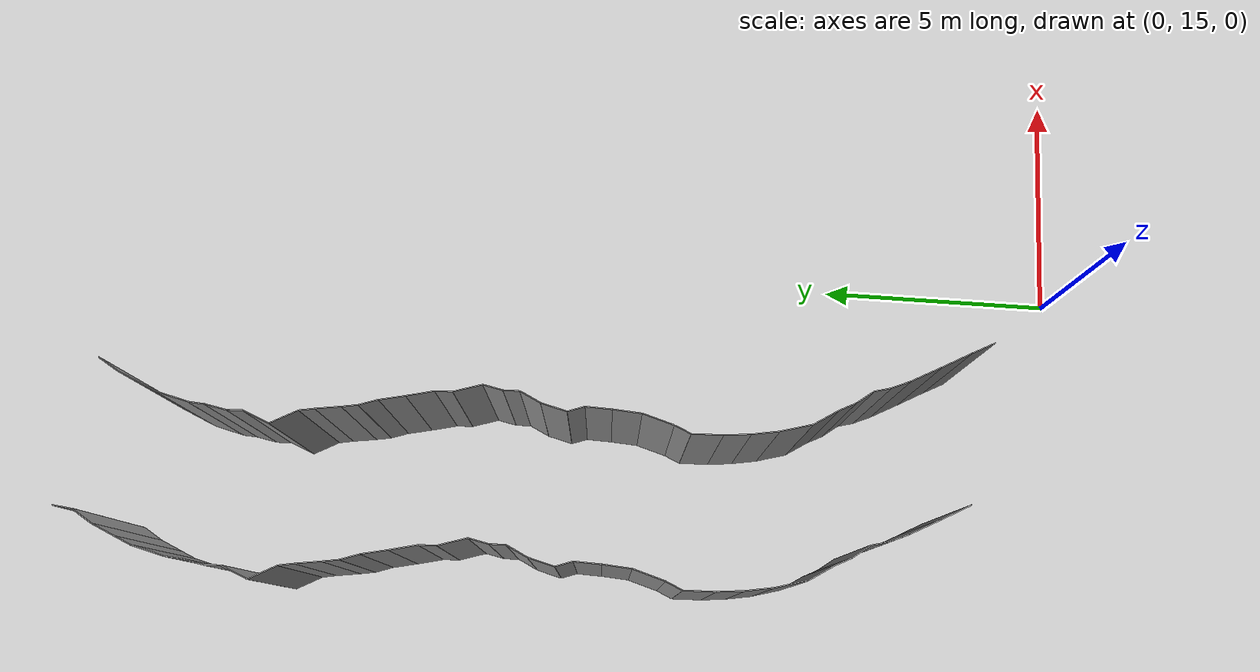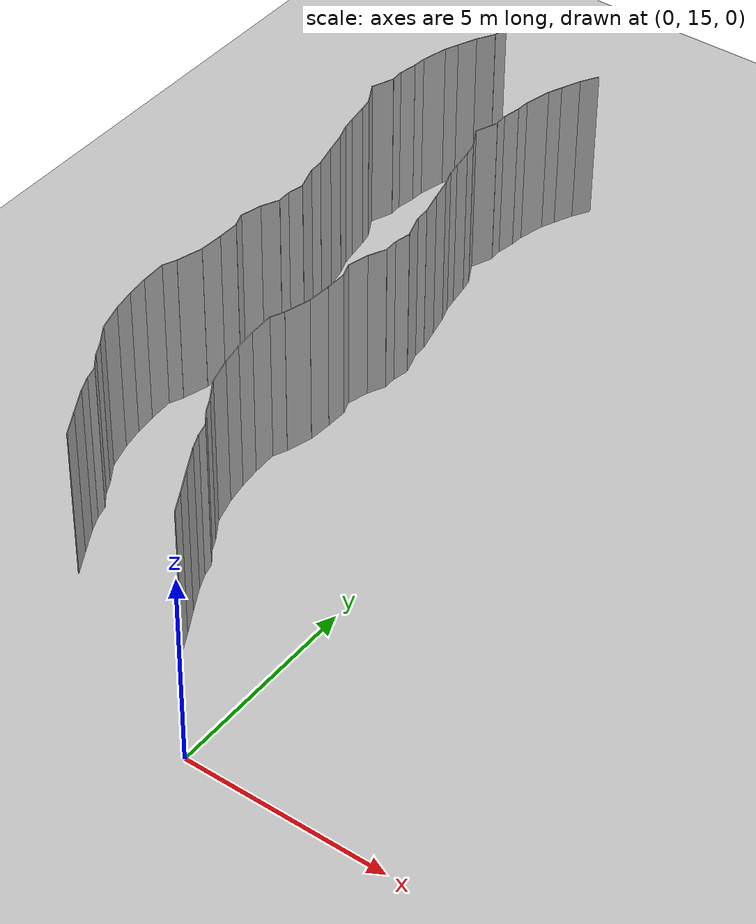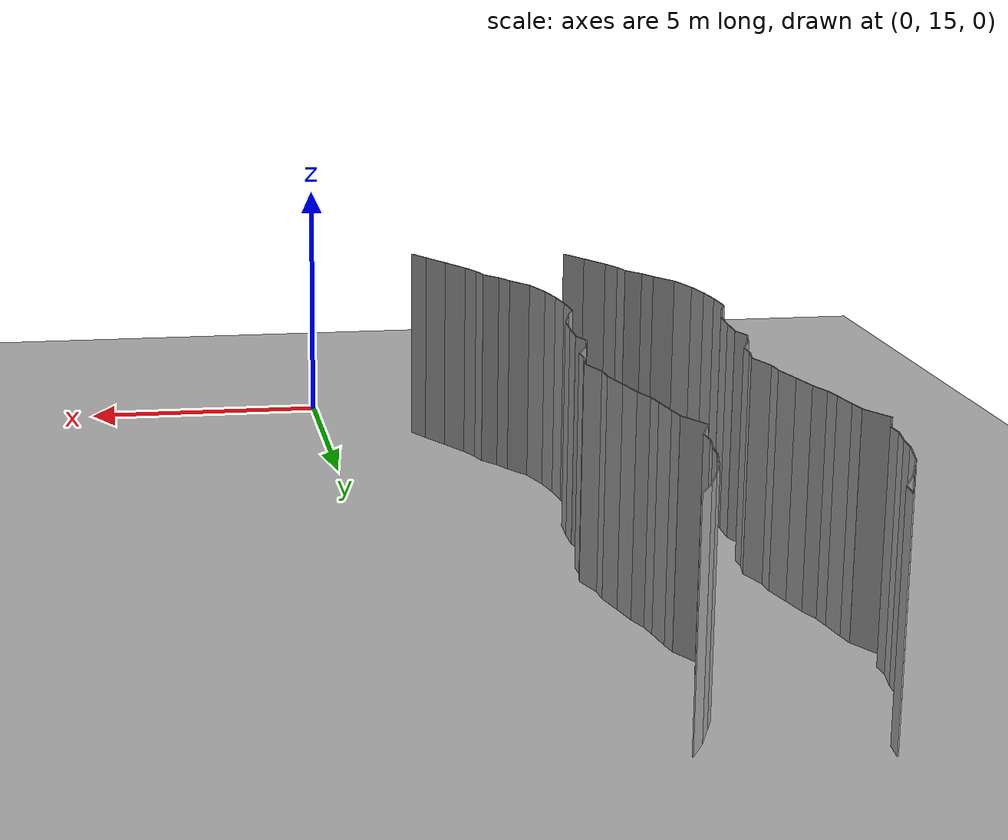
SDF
<sdf version="1.6">
 <world name="default">
  <model name="ground_plane">
   <static>1</static>
   <link name="link">
    <collision name="collision">
     <geometry><plane><normal>0 0 1</normal><size>200 200</size></plane></geometry>
     <surface><friction><ode><mu>100</mu><mu2>50</mu2></ode></friction></surface>
    </collision>
    <visual name="visual">
     <cast_shadows>0</cast_shadows>
     <geometry><plane><normal>0 0 1</normal><size>200 200</size></plane></geometry>
     <material>
      <script><uri>file://media/materials/scripts/gazebo.material</uri><name>Gazebo/Grey</name></script>
     </material>
    </visual>
   </link>
   <pose>0 100 0 0 -0 0</pose>
  </model>
  <model name="wall_73">
   <static>1</static>
   <pose>-2.0607924036425773 17.491723254828283 2 0 0 0.4846432768960352</pose>
   <link name="link">
    <collision name="collision"><geometry><box><size>0.02 0.53250906812 4</size></box></geometry></collision>
    <visual name="visual">
     <material>
      <script><name>Gazebo/Grey</name><uri>file://media/materials/scripts/gazebo.material</uri></script>
     </material>
     <geometry><box><size>0.02 0.53250906812 4</size></box></geometry>
    </visual>
   </link>
  </model>
  <model name="wall_74">
   <static>1</static>
   <pose>-5.345220649938026 18.01889414190017 2 0 0 0.5028809747487007</pose>
   <link name="link">
    <collision name="collision"><geometry><box><size>0.02 0.665552768829 4</size></box></geometry></collision>
    <visual name="visual">
     <material>
      <script><name>Gazebo/Grey</name><uri>file://media/materials/scripts/gazebo.material</uri></script>
     </material>
     <geometry><box><size>0.02 0.665552768829 4</size></box></geometry>
    </visual>
   </link>
  </model>
  <model name="wall_75">
   <static>1</static>
   <pose>-2.3452206499380264 18.01889414190017 2 0 0 0.5028809747487007</pose>
   <link name="link">
    <collision name="collision"><geometry><box><size>0.02 0.665552768829 4</size></box></geometry></collision>
    <visual name="visual">
     <material>
      <script><name>Gazebo/Grey</name><uri>file://media/materials/scripts/gazebo.material</uri></script>
     </material>
     <geometry><box><size>0.02 0.665552768829 4</size></box></geometry>
    </visual>
   </link>
  </model>
  <model name="wall_76">
   <static>1</static>
   <pose>-5.669286127231229 18.616182490043542 2 0 0 0.49157998210096554</pose>
   <link name="link">
    <collision name="collision"><geometry><box><size>0.02 0.693544787583 4</size></box></geometry></collision>
    <visual name="visual">
     <material>
      <script><name>Gazebo/Grey</name><uri>file://media/materials/scripts/gazebo.material</uri></script>
     </material>
     <geometry><box><size>0.02 0.693544787583 4</size></box></geometry>
    </visual>
   </link>
  </model>
  <model name="wall_77">
   <static>1</static>
   <pose>-2.6692861272312287 18.616182490043542 2 0 0 0.49157998210096554</pose>
   <link name="link">
    <collision name="collision"><geometry><box><size>0.02 0.693544787583 4</size></box></geometry></collision>
    <visual name="visual">
     <material>
      <script><name>Gazebo/Grey</name><uri>file://media/materials/scripts/gazebo.material</uri></script>
     </material>
     <geometry><box><size>0.02 0.693544787583 4</size></box></geometry>
    </visual>
   </link>
  </model>
  <model name="wall_78">
   <static>1</static>
   <pose>-5.916083553891802 19.113902176798256 2 0 0 0.4085137231551657</pose>
   <link name="link">
    <collision name="collision"><geometry><box><size>0.02 0.418451957049 4</size></box></geometry></collision>
    <visual name="visual">
     <material>
      <script><name>Gazebo/Grey</name><uri>file://media/materials/scripts/gazebo.material</uri></script>
     </material>
     <geometry><box><size>0.02 0.418451957049 4</size></box></geometry>
    </visual>
   </link>
  </model>
  <model name="wall_79">
   <static>1</static>
   <pose>-2.916083553891802 19.113902176798256 2 0 0 0.4085137231551657</pose>
   <link name="link">
    <collision name="collision"><geometry><box><size>0.02 0.418451957049 4</size></box></geometry></collision>
    <visual name="visual">
     <material>
      <script><name>Gazebo/Grey</name><uri>file://media/materials/scripts/gazebo.material</uri></script>
     </material>
     <geometry><box><size>0.02 0.418451957049 4</size></box></geometry>
    </visual>
   </link>
  </model>
  <model name="wall_80">
   <static>1</static>
   <pose>-6.043150759289813 19.47273873422123 2 0 0 0.2576103904764097</pose>
   <link name="link">
    <collision name="collision"><geometry><box><size>0.02 0.345040428996 4</size></box></geometry></collision>
    <visual name="visual">
     <material>
      <script><name>Gazebo/Grey</name><uri>file://media/materials/scripts/gazebo.material</uri></script>
     </material>
     <geometry><box><size>0.02 0.345040428996 4</size></box></geometry>
    </visual>
   </link>
  </model>
  <model name="wall_81">
   <static>1</static>
   <pose>-3.043150759289813 19.47273873422123 2 0 0 0.2576103904764097</pose>
   <link name="link">
    <collision name="collision"><geometry><box><size>0.02 0.345040428996 4</size></box></geometry></collision>
    <visual name="visual">
     <material>
      <script><name>Gazebo/Grey</name><uri>file://media/materials/scripts/gazebo.material</uri></script>
     </material>
     <geometry><box><size>0.02 0.345040428996 4</size></box></geometry>
    </visual>
   </link>
  </model>
  <model name="wall_82">
   <static>1</static>
   <pose>-6.220000879591763 19.817721115874566 2 0 0 0.6409122930841745</pose>
   <link name="link">
    <collision name="collision"><geometry><box><size>0.02 0.444526064671 4</size></box></geometry></collision>
    <visual name="visual">
     <material>
      <script><name>Gazebo/Grey</name><uri>file://media/materials/scripts/gazebo.material</uri></script>
     </material>
     <geometry><box><size>0.02 0.444526064671 4</size></box></geometry>
    </visual>
   </link>
  </model>
  <model name="wall_83">
   <static>1</static>
   <pose>-3.2200008795917627 19.817721115874566 2 0 0 0.6409122930841745</pose>
   <link name="link">
    <collision name="collision"><geometry><box><size>0.02 0.444526064671 4</size></box></geometry></collision>
    <visual name="visual">
     <material>
      <script><name>Gazebo/Grey</name><uri>file://media/materials/scripts/gazebo.material</uri></script>
     </material>
     <geometry><box><size>0.02 0.444526064671 4</size></box></geometry>
    </visual>
   </link>
  </model>
  <model name="wall_84">
   <static>1</static>
   <pose>-6.434179881542619 20.157008595186763 2 0 0 0.4671948504411013</pose>
   <link name="link">
    <collision name="collision"><geometry><box><size>0.02 0.360945473942 4</size></box></geometry></collision>
    <visual name="visual">
     <material>
      <script><name>Gazebo/Grey</name><uri>file://media/materials/scripts/gazebo.material</uri></script>
     </material>
     <geometry><box><size>0.02 0.360945473942 4</size></box></geometry>
    </visual>
   </link>
  </model>
  <model name="wall_85">
   <static>1</static>
   <pose>-3.4341798815426188 20.157008595186763 2 0 0 0.4671948504411013</pose>
   <link name="link">
    <collision name="collision"><geometry><box><size>0.02 0.360945473942 4</size></box></geometry></collision>
    <visual name="visual">
     <material>
      <script><name>Gazebo/Grey</name><uri>file://media/materials/scripts/gazebo.material</uri></script>
     </material>
     <geometry><box><size>0.02 0.360945473942 4</size></box></geometry>
    </visual>
   </link>
  </model>
  <model name="wall_86">
   <static>1</static>
   <pose>-6.6733210204759885 20.565070635844165 2 0 0 0.5688080419090182</pose>
   <link name="link">
    <collision name="collision"><geometry><box><size>0.02 0.586152766597 4</size></box></geometry></collision>
    <visual name="visual">
     <material>
      <script><name>Gazebo/Grey</name><uri>file://media/materials/scripts/gazebo.material</uri></script>
     </material>
     <geometry><box><size>0.02 0.586152766597 4</size></box></geometry>
    </visual>
   </link>
  </model>
  <model name="wall_87">
   <static>1</static>
   <pose>-3.6733210204759885 20.565070635844165 2 0 0 0.5688080419090182</pose>
   <link name="link">
    <collision name="collision"><geometry><box><size>0.02 0.586152766597 4</size></box></geometry></collision>
    <visual name="visual">
     <material>
      <script><name>Gazebo/Grey</name><uri>file://media/materials/scripts/gazebo.material</uri></script>
     </material>
     <geometry><box><size>0.02 0.586152766597 4</size></box></geometry>
    </visual>
   </link>
  </model>
  <model name="wall_88">
   <static>1</static>
   <pose>-6.922843917641557 21.13718379369608 2 0 0 0.27475394522331736</pose>
   <link name="link">
    <collision name="collision"><geometry><box><size>0.02 0.6757116599 4</size></box></geometry></collision>
    <visual name="visual">
     <material>
      <script><name>Gazebo/Grey</name><uri>file://media/materials/scripts/gazebo.material</uri></script>
     </material>
     <geometry><box><size>0.02 0.6757116599 4</size></box></geometry>
    </visual>
   </link>
  </model>
  <model name="wall_89">
   <static>1</static>
   <pose>-3.922843917641557 21.13718379369608 2 0 0 0.27475394522331736</pose>
   <link name="link">
    <collision name="collision"><geometry><box><size>0.02 0.6757116599 4</size></box></geometry></collision>
    <visual name="visual">
     <material>
      <script><name>Gazebo/Grey</name><uri>file://media/materials/scripts/gazebo.material</uri></script>
     </material>
     <geometry><box><size>0.02 0.6757116599 4</size></box></geometry>
    </visual>
   </link>
  </model>
  <model name="wall_90">
   <static>1</static>
   <pose>-7.06305893801002 21.73964323279934 2 0 0 0.17334375277296987</pose>
   <link name="link">
    <collision name="collision"><geometry><box><size>0.02 0.562989026612 4</size></box></geometry></collision>
    <visual name="visual">
     <material>
      <script><name>Gazebo/Grey</name><uri>file://media/materials/scripts/gazebo.material</uri></script>
     </material>
     <geometry><box><size>0.02 0.562989026612 4</size></box></geometry>
    </visual>
   </link>
  </model>
  <model name="wall_91">
   <static>1</static>
   <pose>-4.06305893801002 21.73964323279934 2 0 0 0.17334375277296987</pose>
   <link name="link">
    <collision name="collision"><geometry><box><size>0.02 0.562989026612 4</size></box></geometry></collision>
    <visual name="visual">
     <material>
      <script><name>Gazebo/Grey</name><uri>file://media/materials/scripts/gazebo.material</uri></script>
     </material>
     <geometry><box><size>0.02 0.562989026612 4</size></box></geometry>
    </visual>
   </link>
  </model>
  <model name="wall_92">
   <static>1</static>
   <pose>-7.13906772173297 22.28646932693655 2 0 0 0.10151388773660333</pose>
   <link name="link">
    <collision name="collision"><geometry><box><size>0.02 0.541890076669 4</size></box></geometry></collision>
    <visual name="visual">
     <material>
      <script><name>Gazebo/Grey</name><uri>file://media/materials/scripts/gazebo.material</uri></script>
     </material>
     <geometry><box><size>0.02 0.541890076669 4</size></box></geometry>
    </visual>
   </link>
  </model>
  <model name="wall_93">
   <static>1</static>
   <pose>-4.13906772173297 22.28646932693655 2 0 0 0.10151388773660333</pose>
   <link name="link">
    <collision name="collision"><geometry><box><size>0.02 0.541890076669 4</size></box></geometry></collision>
    <visual name="visual">
     <material>
      <script><name>Gazebo/Grey</name><uri>file://media/materials/scripts/gazebo.material</uri></script>
     </material>
     <geometry><box><size>0.02 0.541890076669 4</size></box></geometry>
    </visual>
   </link>
  </model>
  <model name="wall_94">
   <static>1</static>
   <pose>-7.177193320205061 22.873375937548918 2 0 0 0.03360295548605317</pose>
   <link name="link">
    <collision name="collision"><geometry><box><size>0.02 0.635071369484 4</size></box></geometry></collision>
    <visual name="visual">
     <material>
      <script><name>Gazebo/Grey</name><uri>file://media/materials/scripts/gazebo.material</uri></script>
     </material>
     <geometry><box><size>0.02 0.635071369484 4</size></box></geometry>
    </visual>
   </link>
  </model>
  <model name="wall_95">
   <static>1</static>
   <pose>-4.177193320205061 22.873375937548918 2 0 0 0.03360295548605317</pose>
   <link name="link">
    <collision name="collision"><geometry><box><size>0.02 0.635071369484 4</size></box></geometry></collision>
    <visual name="visual">
     <material>
      <script><name>Gazebo/Grey</name><uri>file://media/materials/scripts/gazebo.material</uri></script>
     </material>
     <geometry><box><size>0.02 0.635071369484 4</size></box></geometry>
    </visual>
   </link>
  </model>
  <model name="wall_96">
   <static>1</static>
   <pose>-7.1138606923412855 23.357645443033217 2 0 0 -0.4173092613543815</pose>
   <link name="link">
    <collision name="collision"><geometry><box><size>0.02 0.365163457583 4</size></box></geometry></collision>
    <visual name="visual">
     <material>
      <script><name>Gazebo/Grey</name><uri>file://media/materials/scripts/gazebo.material</uri></script>
     </material>
     <geometry><box><size>0.02 0.365163457583 4</size></box></geometry>
    </visual>
   </link>
  </model>
  <model name="wall_97">
   <static>1</static>
   <pose>-4.1138606923412855 23.357645443033217 2 0 0 -0.4173092613543815</pose>
   <link name="link">
    <collision name="collision"><geometry><box><size>0.02 0.365163457583 4</size></box></geometry></collision>
    <visual name="visual">
     <material>
      <script><name>Gazebo/Grey</name><uri>file://media/materials/scripts/gazebo.material</uri></script>
     </material>
     <geometry><box><size>0.02 0.365163457583 4</size></box></geometry>
    </visual>
   </link>
  </model>
  <model name="wall_98">
   <static>1</static>
   <pose>-6.945781839401752 23.84700380858238 2 0 0 -0.2838842912314021</pose>
   <link name="link">
    <collision name="collision"><geometry><box><size>0.02 0.671778688416 4</size></box></geometry></collision>
    <visual name="visual">
     <material>
      <script><name>Gazebo/Grey</name><uri>file://media/materials/scripts/gazebo.material</uri></script>
     </material>
     <geometry><box><size>0.02 0.671778688416 4</size></box></geometry>
    </visual>
   </link>
  </model>
  <model name="wall_99">
   <static>1</static>
   <pose>-3.945781839401752 23.84700380858238 2 0 0 -0.2838842912314021</pose>
   <link name="link">
    <collision name="collision"><geometry><box><size>0.02 0.671778688416 4</size></box></geometry></collision>
    <visual name="visual">
     <material>
      <script><name>Gazebo/Grey</name><uri>file://media/materials/scripts/gazebo.material</uri></script>
     </material>
     <geometry><box><size>0.02 0.671778688416 4</size></box></geometry>
    </visual>
   </link>
  </model>
  <model name="wall_100">
   <static>1</static>
   <pose>-6.831300838762158 24.46487771462607 2 0 0 -0.06895256140401168</pose>
   <link name="link">
    <collision name="collision"><geometry><box><size>0.02 0.592264627118 4</size></box></geometry></collision>
    <visual name="visual">
     <material>
      <script><name>Gazebo/Grey</name><uri>file://media/materials/scripts/gazebo.material</uri></script>
     </material>
     <geometry><box><size>0.02 0.592264627118 4</size></box></geometry>
    </visual>
   </link>
  </model>
  <model name="wall_101">
   <static>1</static>
   <pose>-3.831300838762158 24.46487771462607 2 0 0 -0.06895256140401168</pose>
   <link name="link">
    <collision name="collision"><geometry><box><size>0.02 0.592264627118 4</size></box></geometry></collision>
    <visual name="visual">
     <material>
      <script><name>Gazebo/Grey</name><uri>file://media/materials/scripts/gazebo.material</uri></script>
     </material>
     <geometry><box><size>0.02 0.592264627118 4</size></box></geometry>
    </visual>
   </link>
  </model>
  <model name="wall_102">
   <static>1</static>
   <pose>-6.803470258762051 25.031499455954926 2 0 0 -0.027382030763485152</pose>
   <link name="link">
    <collision name="collision"><geometry><box><size>0.02 0.542589643297 4</size></box></geometry></collision>
    <visual name="visual">
     <material>
      <script><name>Gazebo/Grey</name><uri>file://media/materials/scripts/gazebo.material</uri></script>
     </material>
     <geometry><box><size>0.02 0.542589643297 4</size></box></geometry>
    </visual>
   </link>
  </model>
  <model name="wall_103">
   <static>1</static>
   <pose>-3.803470258762051 25.031499455954926 2 0 0 -0.027382030763485152</pose>
   <link name="link">
    <collision name="collision"><geometry><box><size>0.02 0.542589643297 4</size></box></geometry></collision>
    <visual name="visual">
     <material>
      <script><name>Gazebo/Grey</name><uri>file://media/materials/scripts/gazebo.material</uri></script>
     </material>
     <geometry><box><size>0.02 0.542589643297 4</size></box></geometry>
    </visual>
   </link>
  </model>
  <model name="wall_104">
   <static>1</static>
   <pose>-6.8570370827180565 25.474025962831313 2 0 0 0.3420090363213221</pose>
   <link name="link">
    <collision name="collision"><geometry><box><size>0.02 0.363733184409 4</size></box></geometry></collision>
    <visual name="visual">
     <material>
      <script><name>Gazebo/Grey</name><uri>file://media/materials/scripts/gazebo.material</uri></script>
     </material>
     <geometry><box><size>0.02 0.363733184409 4</size></box></geometry>
    </visual>
   </link>
  </model>
  <model name="wall_105">
   <static>1</static>
   <pose>-3.8570370827180565 25.474025962831313 2 0 0 0.3420090363213221</pose>
   <link name="link">
    <collision name="collision"><geometry><box><size>0.02 0.363733184409 4</size></box></geometry></collision>
    <visual name="visual">
     <material>
      <script><name>Gazebo/Grey</name><uri>file://media/materials/scripts/gazebo.material</uri></script>
     </material>
     <geometry><box><size>0.02 0.363733184409 4</size></box></geometry>
    </visual>
   </link>
  </model>
  <model name="wall_106">
   <static>1</static>
   <pose>-6.850594028256721 25.911453324706912 2 0 0 -0.2482090740920248</pose>
   <link name="link">
    <collision name="collision"><geometry><box><size>0.02 0.549013036862 4</size></box></geometry></collision>
    <visual name="visual">
     <material>
      <script><name>Gazebo/Grey</name><uri>file://media/materials/scripts/gazebo.material</uri></script>
     </material>
     <geometry><box><size>0.02 0.549013036862 4</size></box></geometry>
    </visual>
   </link>
  </model>
  <model name="wall_107">
   <static>1</static>
   <pose>-3.8505940282567206 25.911453324706912 2 0 0 -0.2482090740920248</pose>
   <link name="link">
    <collision name="collision"><geometry><box><size>0.02 0.549013036862 4</size></box></geometry></collision>
    <visual name="visual">
     <material>
      <script><name>Gazebo/Grey</name><uri>file://media/materials/scripts/gazebo.material</uri></script>
     </material>
     <geometry><box><size>0.02 0.549013036862 4</size></box></geometry>
    </visual>
   </link>
  </model>
  <model name="wall_108">
   <static>1</static>
   <pose>-6.6800102666164385 26.39138568412589 2 0 0 -0.44943297053546205</pose>
   <link name="link">
    <collision name="collision"><geometry><box><size>0.02 0.474830469586 4</size></box></geometry></collision>
    <visual name="visual">
     <material>
      <script><name>Gazebo/Grey</name><uri>file://media/materials/scripts/gazebo.material</uri></script>
     </material>
     <geometry><box><size>0.02 0.474830469586 4</size></box></geometry>
    </visual>
   </link>
  </model>
  <model name="wall_109">
   <static>1</static>
   <pose>-3.6800102666164385 26.39138568412589 2 0 0 -0.44943297053546205</pose>
   <link name="link">
    <collision name="collision"><geometry><box><size>0.02 0.474830469586 4</size></box></geometry></collision>
    <visual name="visual">
     <material>
      <script><name>Gazebo/Grey</name><uri>file://media/materials/scripts/gazebo.material</uri></script>
     </material>
     <geometry><box><size>0.02 0.474830469586 4</size></box></geometry>
    </visual>
   </link>
  </model>
  <model name="wall_110">
   <static>1</static>
   <pose>-6.580253497637075 26.772556801974787 2 0 0 0.020252916366360913</pose>
   <link name="link">
    <collision name="collision"><geometry><box><size>0.02 0.334734121002 4</size></box></geometry></collision>
    <visual name="visual">
     <material>
      <script><name>Gazebo/Grey</name><uri>file://media/materials/scripts/gazebo.material</uri></script>
     </material>
     <geometry><box><size>0.02 0.334734121002 4</size></box></geometry>
    </visual>
   </link>
  </model>
  <model name="wall_111">
   <static>1</static>
   <pose>-3.5802534976370746 26.772556801974787 2 0 0 0.020252916366360913</pose>
   <link name="link">
    <collision name="collision"><geometry><box><size>0.02 0.334734121002 4</size></box></geometry></collision>
    <visual name="visual">
     <material>
      <script><name>Gazebo/Grey</name><uri>file://media/materials/scripts/gazebo.material</uri></script>
     </material>
     <geometry><box><size>0.02 0.334734121002 4</size></box></geometry>
    </visual>
   </link>
  </model>
  <model name="wall_112">
   <static>1</static>
   <pose>-6.5420724787200415 27.142682335509125 2 0 0 -0.20218882397474172</pose>
   <link name="link">
    <collision name="collision"><geometry><box><size>0.02 0.414019427593 4</size></box></geometry></collision>
    <visual name="visual">
     <material>
      <script><name>Gazebo/Grey</name><uri>file://media/materials/scripts/gazebo.material</uri></script>
     </material>
     <geometry><box><size>0.02 0.414019427593 4</size></box></geometry>
    </visual>
   </link>
  </model>
  <model name="wall_113">
   <static>1</static>
   <pose>-3.5420724787200415 27.142682335509125 2 0 0 -0.20218882397474172</pose>
   <link name="link">
    <collision name="collision"><geometry><box><size>0.02 0.414019427593 4</size></box></geometry></collision>
    <visual name="visual">
     <material>
      <script><name>Gazebo/Grey</name><uri>file://media/materials/scripts/gazebo.material</uri></script>
     </material>
     <geometry><box><size>0.02 0.414019427593 4</size></box></geometry>
    </visual>
   </link>
  </model>
  <model name="wall_114">
   <static>1</static>
   <pose>-6.59234571455064 27.634802565021182 2 0 0 0.3073777408918025</pose>
   <link name="link">
    <collision name="collision"><geometry><box><size>0.02 0.60710996441 4</size></box></geometry></collision>
    <visual name="visual">
     <material>
      <script><name>Gazebo/Grey</name><uri>file://media/materials/scripts/gazebo.material</uri></script>
     </material>
     <geometry><box><size>0.02 0.60710996441 4</size></box></geometry>
    </visual>
   </link>
  </model>
  <model name="wall_115">
   <static>1</static>
   <pose>-3.59234571455064 27.634802565021182 2 0 0 0.3073777408918025</pose>
   <link name="link">
    <collision name="collision"><geometry><box><size>0.02 0.60710996441 4</size></box></geometry></collision>
    <visual name="visual">
     <material>
      <script><name>Gazebo/Grey</name><uri>file://media/materials/scripts/gazebo.material</uri></script>
     </material>
     <geometry><box><size>0.02 0.60710996441 4</size></box></geometry>
    </visual>
   </link>
  </model>
  <model name="wall_116">
   <static>1</static>
   <pose>-6.691353944783223 28.10016130994259 2 0 0 0.04067789922672024</pose>
   <link name="link">
    <collision name="collision"><geometry><box><size>0.02 0.352354103736 4</size></box></geometry></collision>
    <visual name="visual">
     <material>
      <script><name>Gazebo/Grey</name><uri>file://media/materials/scripts/gazebo.material</uri></script>
     </material>
     <geometry><box><size>0.02 0.352354103736 4</size></box></geometry>
    </visual>
   </link>
  </model>
  <model name="wall_117">
   <static>1</static>
   <pose>-3.6913539447832227 28.10016130994259 2 0 0 0.04067789922672024</pose>
   <link name="link">
    <collision name="collision"><geometry><box><size>0.02 0.352354103736 4</size></box></geometry></collision>
    <visual name="visual">
     <material>
      <script><name>Gazebo/Grey</name><uri>file://media/materials/scripts/gazebo.material</uri></script>
     </material>
     <geometry><box><size>0.02 0.352354103736 4</size></box></geometry>
    </visual>
   </link>
  </model>
  <model name="wall_118">
   <static>1</static>
   <pose>-6.765815724449046 28.55745321267789 2 0 0 0.23485469886707294</pose>
   <link name="link">
    <collision name="collision"><geometry><box><size>0.02 0.578399303363 4</size></box></geometry></collision>
    <visual name="visual">
     <material>
      <script><name>Gazebo/Grey</name><uri>file://media/materials/scripts/gazebo.material</uri></script>
     </material>
     <geometry><box><size>0.02 0.578399303363 4</size></box></geometry>
    </visual>
   </link>
  </model>
  <model name="wall_119">
   <static>1</static>
   <pose>-3.7658157244490464 28.55745321267789 2 0 0 0.23485469886707294</pose>
   <link name="link">
    <collision name="collision"><geometry><box><size>0.02 0.578399303363 4</size></box></geometry></collision>
    <visual name="visual">
     <material>
      <script><name>Gazebo/Grey</name><uri>file://media/materials/scripts/gazebo.material</uri></script>
     </material>
     <geometry><box><size>0.02 0.578399303363 4</size></box></geometry>
    </visual>
   </link>
  </model>
  <model name="wall_120">
   <static>1</static>
   <pose>-6.8907866601800976 29.10103781072838 2 0 0 0.2164136217702431</pose>
   <link name="link">
    <collision name="collision"><geometry><box><size>0.02 0.537178331346 4</size></box></geometry></collision>
    <visual name="visual">
     <material>
      <script><name>Gazebo/Grey</name><uri>file://media/materials/scripts/gazebo.material</uri></script>
     </material>
     <geometry><box><size>0.02 0.537178331346 4</size></box></geometry>
    </visual>
   </link>
  </model>
  <model name="wall_121">
   <static>1</static>
   <pose>-3.8907866601800976 29.10103781072838 2 0 0 0.2164136217702431</pose>
   <link name="link">
    <collision name="collision"><geometry><box><size>0.02 0.537178331346 4</size></box></geometry></collision>
    <visual name="visual">
     <material>
      <script><name>Gazebo/Grey</name><uri>file://media/materials/scripts/gazebo.material</uri></script>
     </material>
     <geometry><box><size>0.02 0.537178331346 4</size></box></geometry>
    </visual>
   </link>
  </model>
  <model name="wall_122">
   <static>1</static>
   <pose>-7.014367280818819 29.553934322006242 2 0 0 0.3329608878123762</pose>
   <link name="link">
    <collision name="collision"><geometry><box><size>0.02 0.403294444507 4</size></box></geometry></collision>
    <visual name="visual">
     <material>
      <script><name>Gazebo/Grey</name><uri>file://media/materials/scripts/gazebo.material</uri></script>
     </material>
     <geometry><box><size>0.02 0.403294444507 4</size></box></geometry>
    </visual>
   </link>
  </model>
  <model name="wall_123">
   <static>1</static>
   <pose>-4.014367280818819 29.553934322006242 2 0 0 0.3329608878123762</pose>
   <link name="link">
    <collision name="collision"><geometry><box><size>0.02 0.403294444507 4</size></box></geometry></collision>
    <visual name="visual">
     <material>
      <script><name>Gazebo/Grey</name><uri>file://media/materials/scripts/gazebo.material</uri></script>
     </material>
     <geometry><box><size>0.02 0.403294444507 4</size></box></geometry>
    </visual>
   </link>
  </model>
  <model name="wall_124">
   <static>1</static>
   <pose>-7.108217666016765 29.908109786482896 2 0 0 0.1691680052578264</pose>
   <link name="link">
    <collision name="collision"><geometry><box><size>0.02 0.331944366851 4</size></box></geometry></collision>
    <visual name="visual">
     <material>
      <script><name>Gazebo/Grey</name><uri>file://media/materials/scripts/gazebo.material</uri></script>
     </material>
     <geometry><box><size>0.02 0.331944366851 4</size></box></geometry>
    </visual>
   </link>
  </model>
  <model name="wall_125">
   <static>1</static>
   <pose>-4.108217666016765 29.908109786482896 2 0 0 0.1691680052578264</pose>
   <link name="link">
    <collision name="collision"><geometry><box><size>0.02 0.331944366851 4</size></box></geometry></collision>
    <visual name="visual">
     <material>
      <script><name>Gazebo/Grey</name><uri>file://media/materials/scripts/gazebo.material</uri></script>
     </material>
     <geometry><box><size>0.02 0.331944366851 4</size></box></geometry>
    </visual>
   </link>
  </model>
  <model name="wall_126">
   <static>1</static>
   <pose>-7.1748471036998245 30.329759239629507 2 0 0 0.1488103837624737</pose>
   <link name="link">
    <collision name="collision"><geometry><box><size>0.02 0.521860506857 4</size></box></geometry></collision>
    <visual name="visual">
     <material>
      <script><name>Gazebo/Grey</name><uri>file://media/materials/scripts/gazebo.material</uri></script>
     </material>
     <geometry><box><size>0.02 0.521860506857 4</size></box></geometry>
    </visual>
   </link>
  </model>
  <model name="wall_127">
   <static>1</static>
   <pose>-4.1748471036998245 30.329759239629507 2 0 0 0.1488103837624737</pose>
   <link name="link">
    <collision name="collision"><geometry><box><size>0.02 0.521860506857 4</size></box></geometry></collision>
    <visual name="visual">
     <material>
      <script><name>Gazebo/Grey</name><uri>file://media/materials/scripts/gazebo.material</uri></script>
     </material>
     <geometry><box><size>0.02 0.521860506857 4</size></box></geometry>
    </visual>
   </link>
  </model>
  <model name="wall_128">
   <static>1</static>
   <pose>-7.241619987037263 30.74407908827745 2 0 0 0.17783073003579675</pose>
   <link name="link">
    <collision name="collision"><geometry><box><size>0.02 0.317554632054 4</size></box></geometry></collision>
    <visual name="visual">
     <material>
      <script><name>Gazebo/Grey</name><uri>file://media/materials/scripts/gazebo.material</uri></script>
     </material>
     <geometry><box><size>0.02 0.317554632054 4</size></box></geometry>
    </visual>
   </link>
  </model>
  <model name="wall_129">
   <static>1</static>
   <pose>-4.241619987037263 30.74407908827745 2 0 0 0.17783073003579675</pose>
   <link name="link">
    <collision name="collision"><geometry><box><size>0.02 0.317554632054 4</size></box></geometry></collision>
    <visual name="visual">
     <material>
      <script><name>Gazebo/Grey</name><uri>file://media/materials/scripts/gazebo.material</uri></script>
     </material>
     <geometry><box><size>0.02 0.317554632054 4</size></box></geometry>
    </visual>
   </link>
  </model>
  <model name="wall_130">
   <static>1</static>
   <pose>-7.41790349415971 31.17341402675878 2 0 0 0.49723854587292193</pose>
   <link name="link">
    <collision name="collision"><geometry><box><size>0.02 0.621369008311 4</size></box></geometry></collision>
    <visual name="visual">
     <material>
      <script><name>Gazebo/Grey</name><uri>file://media/materials/scripts/gazebo.material</uri></script>
     </material>
     <geometry><box><size>0.02 0.621369008311 4</size></box></geometry>
    </visual>
   </link>
  </model>
  <model name="wall_131">
   <static>1</static>
   <pose>-4.41790349415971 31.17341402675878 2 0 0 0.49723854587292193</pose>
   <link name="link">
    <collision name="collision"><geometry><box><size>0.02 0.621369008311 4</size></box></geometry></collision>
    <visual name="visual">
     <material>
      <script><name>Gazebo/Grey</name><uri>file://media/materials/scripts/gazebo.material</uri></script>
     </material>
     <geometry><box><size>0.02 0.621369008311 4</size></box></geometry>
    </visual>
   </link>
  </model>
  <model name="wall_132">
   <static>1</static>
   <pose>-7.455854382409598 31.720361855751754 2 0 0 -0.38268011966038196</pose>
   <link name="link">
    <collision name="collision"><geometry><box><size>0.02 0.59048385035 4</size></box></geometry></collision>
    <visual name="visual">
     <material>
      <script><name>Gazebo/Grey</name><uri>file://media/materials/scripts/gazebo.material</uri></script>
     </material>
     <geometry><box><size>0.02 0.59048385035 4</size></box></geometry>
    </visual>
   </link>
  </model>
  <model name="wall_133">
   <static>1</static>
   <pose>-4.455854382409598 31.720361855751754 2 0 0 -0.38268011966038196</pose>
   <link name="link">
    <collision name="collision"><geometry><box><size>0.02 0.59048385035 4</size></box></geometry></collision>
    <visual name="visual">
     <material>
      <script><name>Gazebo/Grey</name><uri>file://media/materials/scripts/gazebo.material</uri></script>
     </material>
     <geometry><box><size>0.02 0.59048385035 4</size></box></geometry>
    </visual>
   </link>
  </model>
  <model name="wall_134">
   <static>1</static>
   <pose>-7.354063396097326 32.152930759753254 2 0 0 0.05323041208512402</pose>
   <link name="link">
    <collision name="collision"><geometry><box><size>0.02 0.317815468753 4</size></box></geometry></collision>
    <visual name="visual">
     <material>
      <script><name>Gazebo/Grey</name><uri>file://media/materials/scripts/gazebo.material</uri></script>
     </material>
     <geometry><box><size>0.02 0.317815468753 4</size></box></geometry>
    </visual>
   </link>
  </model>
  <model name="wall_135">
   <static>1</static>
   <pose>-4.354063396097326 32.152930759753254 2 0 0 0.05323041208512402</pose>
   <link name="link">
    <collision name="collision"><geometry><box><size>0.02 0.317815468753 4</size></box></geometry></collision>
    <visual name="visual">
     <material>
      <script><name>Gazebo/Grey</name><uri>file://media/materials/scripts/gazebo.material</uri></script>
     </material>
     <geometry><box><size>0.02 0.317815468753 4</size></box></geometry>
    </visual>
   </link>
  </model>
  <model name="wall_136">
   <static>1</static>
   <pose>-7.319307020460253 32.53895195644248 2 0 0 -0.1878331981074371</pose>
   <link name="link">
    <collision name="collision"><geometry><box><size>0.02 0.462817507719 4</size></box></geometry></collision>
    <visual name="visual">
     <material>
      <script><name>Gazebo/Grey</name><uri>file://media/materials/scripts/gazebo.material</uri></script>
     </material>
     <geometry><box><size>0.02 0.462817507719 4</size></box></geometry>
    </visual>
   </link>
  </model>
  <model name="wall_137">
   <static>1</static>
   <pose>-4.319307020460253 32.53895195644248 2 0 0 -0.1878331981074371</pose>
   <link name="link">
    <collision name="collision"><geometry><box><size>0.02 0.462817507719 4</size></box></geometry></collision>
    <visual name="visual">
     <material>
      <script><name>Gazebo/Grey</name><uri>file://media/materials/scripts/gazebo.material</uri></script>
     </material>
     <geometry><box><size>0.02 0.462817507719 4</size></box></geometry>
    </visual>
   </link>
  </model>
  <model name="wall_138">
   <static>1</static>
   <pose>-7.264913313024028 32.92977875695749 2 0 0 -0.06829365539611329</pose>
   <link name="link">
    <collision name="collision"><geometry><box><size>0.02 0.327740519046 4</size></box></geometry></collision>
    <visual name="visual">
     <material>
      <script><name>Gazebo/Grey</name><uri>file://media/materials/scripts/gazebo.material</uri></script>
     </material>
     <geometry><box><size>0.02 0.327740519046 4</size></box></geometry>
    </visual>
   </link>
  </model>
  <model name="wall_139">
   <static>1</static>
   <pose>-4.264913313024028 32.92977875695749 2 0 0 -0.06829365539611329</pose>
   <link name="link">
    <collision name="collision"><geometry><box><size>0.02 0.327740519046 4</size></box></geometry></collision>
    <visual name="visual">
     <material>
      <script><name>Gazebo/Grey</name><uri>file://media/materials/scripts/gazebo.material</uri></script>
     </material>
     <geometry><box><size>0.02 0.327740519046 4</size></box></geometry>
    </visual>
   </link>
  </model>
  <model name="wall_140">
   <static>1</static>
   <pose>-7.172297642831377 33.42589742486315 2 0 0 -0.24009318189165854</pose>
   <link name="link">
    <collision name="collision"><geometry><box><size>0.02 0.684906803795 4</size></box></geometry></collision>
    <visual name="visual">
     <material>
      <script><name>Gazebo/Grey</name><uri>file://media/materials/scripts/gazebo.material</uri></script>
     </material>
     <geometry><box><size>0.02 0.684906803795 4</size></box></geometry>
    </visual>
   </link>
  </model>
  <model name="wall_141">
   <static>1</static>
   <pose>-4.172297642831377 33.42589742486315 2 0 0 -0.24009318189165854</pose>
   <link name="link">
    <collision name="collision"><geometry><box><size>0.02 0.684906803795 4</size></box></geometry></collision>
    <visual name="visual">
     <material>
      <script><name>Gazebo/Grey</name><uri>file://media/materials/scripts/gazebo.material</uri></script>
     </material>
     <geometry><box><size>0.02 0.684906803795 4</size></box></geometry>
    </visual>
   </link>
  </model>
  <model name="wall_142">
   <static>1</static>
   <pose>-7.019288588483109 33.92612454241706 2 0 0 -0.40362496365001793</pose>
   <link name="link">
    <collision name="collision"><geometry><box><size>0.02 0.364481983384 4</size></box></geometry></collision>
    <visual name="visual">
     <material>
      <script><name>Gazebo/Grey</name><uri>file://media/materials/scripts/gazebo.material</uri></script>
     </material>
     <geometry><box><size>0.02 0.364481983384 4</size></box></geometry>
    </visual>
   </link>
  </model>
  <model name="wall_143">
   <static>1</static>
   <pose>-4.019288588483109 33.92612454241706 2 0 0 -0.40362496365001793</pose>
   <link name="link">
    <collision name="collision"><geometry><box><size>0.02 0.364481983384 4</size></box></geometry></collision>
    <visual name="visual">
     <material>
      <script><name>Gazebo/Grey</name><uri>file://media/materials/scripts/gazebo.material</uri></script>
     </material>
     <geometry><box><size>0.02 0.364481983384 4</size></box></geometry>
    </visual>
   </link>
  </model>
  <model name="wall_144">
   <static>1</static>
   <pose>-6.844450199046434 34.33277916307848 2 0 0 -0.4077473228821944</pose>
   <link name="link">
    <collision name="collision"><geometry><box><size>0.02 0.520814010957 4</size></box></geometry></collision>
    <visual name="visual">
     <material>
      <script><name>Gazebo/Grey</name><uri>file://media/materials/scripts/gazebo.material</uri></script>
     </material>
     <geometry><box><size>0.02 0.520814010957 4</size></box></geometry>
    </visual>
   </link>
  </model>
  <model name="wall_145">
   <static>1</static>
   <pose>-3.8444501990464337 34.33277916307848 2 0 0 -0.4077473228821944</pose>
   <link name="link">
    <collision name="collision"><geometry><box><size>0.02 0.520814010957 4</size></box></geometry></collision>
    <visual name="visual">
     <material>
      <script><name>Gazebo/Grey</name><uri>file://media/materials/scripts/gazebo.material</uri></script>
     </material>
     <geometry><box><size>0.02 0.520814010957 4</size></box></geometry>
    </visual>
   </link>
  </model>
  <model name="wall_146">
   <static>1</static>
   <pose>-6.614084966791938 34.786456103919285 2 0 0 -0.5346832268933615</pose>
   <link name="link">
    <collision name="collision"><geometry><box><size>0.02 0.49886453991 4</size></box></geometry></collision>
    <visual name="visual">
     <material>
      <script><name>Gazebo/Grey</name><uri>file://media/materials/scripts/gazebo.material</uri></script>
     </material>
     <geometry><box><size>0.02 0.49886453991 4</size></box></geometry>
    </visual>
   </link>
  </model>
  <model name="wall_147">
   <static>1</static>
   <pose>-3.614084966791938 34.786456103919285 2 0 0 -0.5346832268933615</pose>
   <link name="link">
    <collision name="collision"><geometry><box><size>0.02 0.49886453991 4</size></box></geometry></collision>
    <visual name="visual">
     <material>
      <script><name>Gazebo/Grey</name><uri>file://media/materials/scripts/gazebo.material</uri></script>
     </material>
     <geometry><box><size>0.02 0.49886453991 4</size></box></geometry>
    </visual>
   </link>
  </model>
  <model name="wall_148">
   <static>1</static>
   <pose>-6.465293173453517 35.198622728076074 2 0 0 -0.10935310508599565</pose>
   <link name="link">
    <collision name="collision"><geometry><box><size>0.02 0.397469309263 4</size></box></geometry></collision>
    <visual name="visual">
     <material>
      <script><name>Gazebo/Grey</name><uri>file://media/materials/scripts/gazebo.material</uri></script>
     </material>
     <geometry><box><size>0.02 0.397469309263 4</size></box></geometry>
    </visual>
   </link>
  </model>
 </world>
</sdf>
